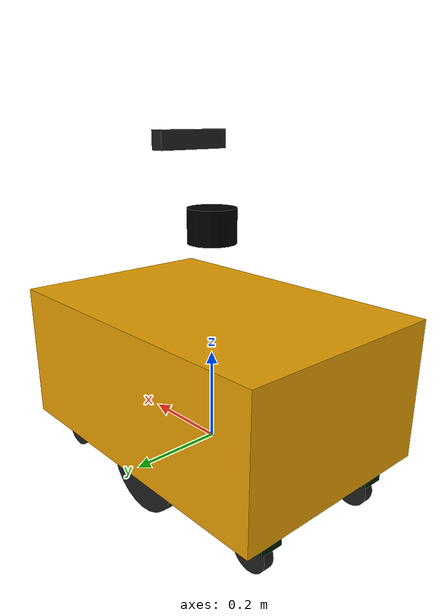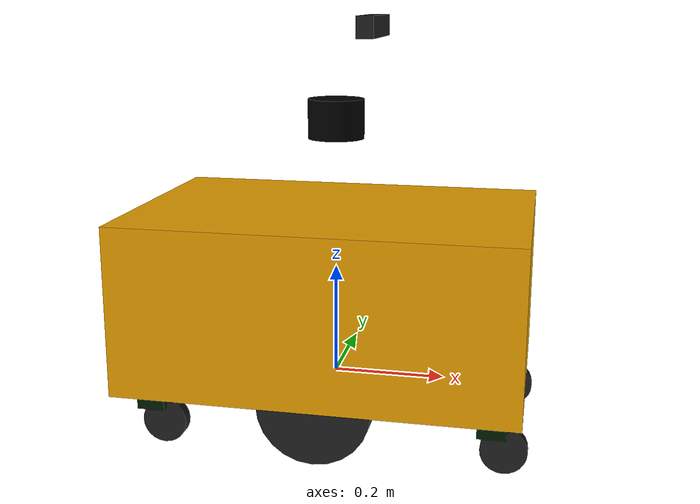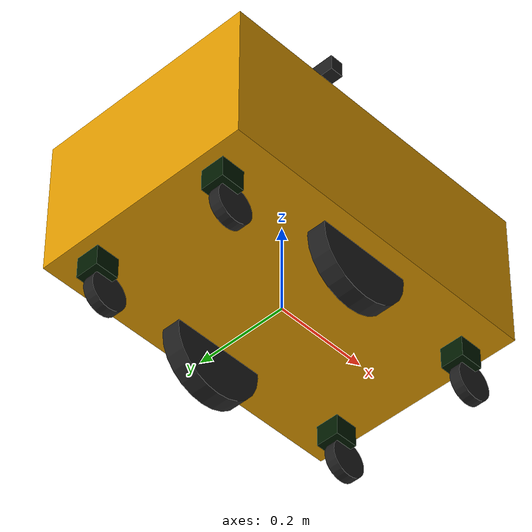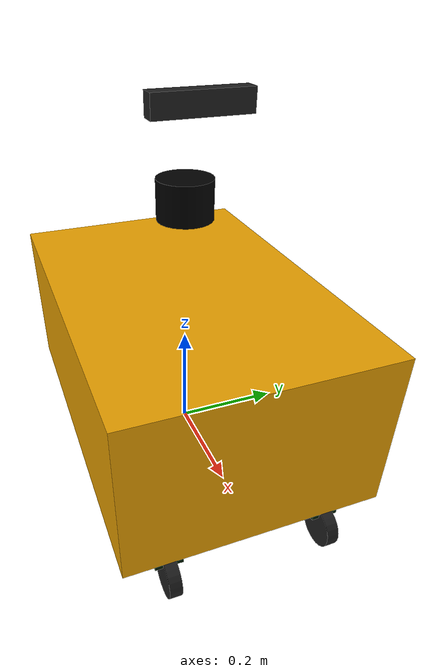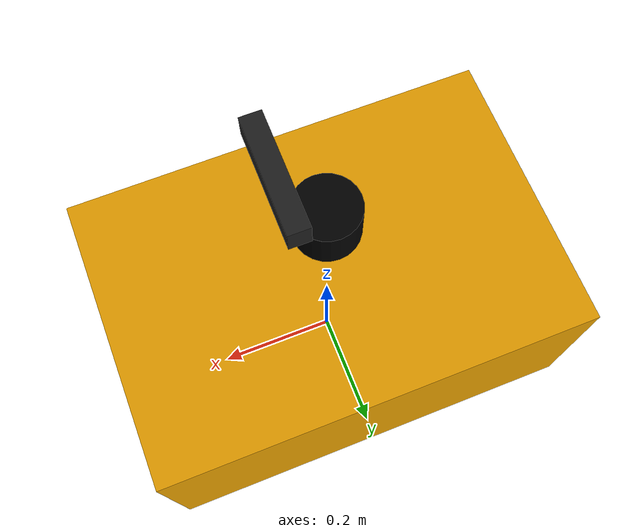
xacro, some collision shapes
<?xml version="1.0"?>
    <robot xmlns:xacro="http://www.ros.org/wiki/xacro"  name="moborobo_short">
        <xacro:include filename="robot_core.xacro" />
        <xacro:include filename="controller.xacro" />
        <xacro:include filename="camera.xacro"/>
        <xacro:include filename="imu.xacro"/>
        <xacro:include filename="lidar.xacro"/>
    </robot>

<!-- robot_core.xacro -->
<robot xmlns:xacro="http://www.ros.org/wiki/xacro" name="gravel_detect_robot">

  <xacro:property name="mesh_path" value="file://$(find gravel_detect)/meshes/moborobo_short.stl"/>

  <link name="base_link">
    <visual>
      <geometry>
        <mesh filename="${mesh_path}" scale="1 1 1"/>
      </geometry>
    </visual>
    <collision>
      <origin xyz="0 0 0.04" rpy="0 0 0"/>
      <geometry>
        <box size="0.70 0.470 0.3"/>
      </geometry>
    </collision>
    <inertial>
      <origin xyz="0 0 0.06" rpy="0 0 0"/>
      <mass value="20.0"/>
      <inertia ixx="0.51816" ixy="0" ixz="0" iyy="0.966664" iyz="0" izz="1.18484"/>
    </inertial>
  </link>

  <link name="base_footprint"/>
  <joint name="base_footprint_joint" type="fixed">
    <parent link="base_footprint"/>
    <child link="base_link"/>
    <origin xyz="0 0 0.120" rpy="0 0 0"/>
  </joint>

  <xacro:macro name="caster_wheel" params="caster_name caster_xyz wheel_xyz">
    <link name="${caster_name}">
      <visual>
        <geometry>
          <box size="0.05 0.05 0.05"/>
        </geometry>
        <material name="green">
          <color rgba="0.0 0.1 0.0 1"/>
        </material>
      </visual>
      <collision>
        <geometry>
          <box size="0.05 0.05 0.05"/>
        </geometry>
      </collision>
      <inertial>
        <mass value="0.5"/>
        <inertia ixx="0.000208332" ixy="0" ixz="0" iyy="0.000208332" iyz="0" izz="0.000208332"/>
      </inertial>
    </link>

    <joint name="${caster_name}_joint" type="continuous">
      <parent link="base_link"/>
      <child link="${caster_name}"/>
      <origin xyz="${caster_xyz}" rpy="0 0 0"/>
      <axis xyz="0 0 1"/>
    </joint>

    <link name="${caster_name}_wheel">
      <visual>
        <geometry>
          <cylinder radius="0.04" length="0.0228"/>
        </geometry>
      </visual>
      <collision>
        <geometry>
          <cylinder radius="0.04" length="0.0228"/>
        </geometry>
      </collision>
      <inertial>
        <mass value="0.5"/>
        <inertia ixx="0.00022166" ixy="0" ixz="0" iyy="0.00022166" iyz="0" izz="0.0004"/>
      </inertial>
    </link>

    <joint name="${caster_name}_wheel_joint" type="continuous">
      <parent link="${caster_name}"/>
      <child link="${caster_name}_wheel"/>
      <origin xyz="${wheel_xyz}" rpy="-1.5708 0 0"/>
      <axis xyz="0 0 1"/>
    </joint>
  </xacro:macro>

  <xacro:caster_wheel caster_name="back_left_caster" caster_xyz="-0.300 0.150 -0.130" wheel_xyz="0.02 0 -0.05"/>
  <xacro:caster_wheel caster_name="back_right_caster" caster_xyz="-0.300 -0.150 -0.130" wheel_xyz="0.02 0 -0.05"/>
  <xacro:caster_wheel caster_name="front_left_caster" caster_xyz="0.300 0.150 -0.130" wheel_xyz="0.02 0 -0.05"/>
  <xacro:caster_wheel caster_name="front_right_caster" caster_xyz="0.300 -0.150 -0.130" wheel_xyz="0.02 0 -0.05"/>

  <link name="right_wheel">
    <visual>
      <geometry>
        <cylinder radius="0.1" length="0.04"/>
      </geometry>
    </visual>
    <collision>
      <geometry>
        <cylinder radius="0.1" length="0.04"/>
      </geometry>
    </collision>
    <inertial>
      <mass value="2"/>
      <inertia ixx="0.005066668" ixy="0" ixz="0" iyy="0.005066668" iyz="0" izz="0.01"/>
    </inertial>
  </link>

  <joint name="right_wheel_joint" type="continuous">
    <parent link="base_link"/>
    <child link="right_wheel"/>
    <origin xyz="0.0 -0.175 -0.120" rpy="-1.5708 0 0"/>
    <axis xyz="0 0 1"/>
  </joint>

  <link name="left_wheel">
    <visual>
      <geometry>
        <cylinder radius="0.1" length="0.04"/>
      </geometry>
    </visual>
    <collision>
      <geometry>
        <cylinder radius="0.1" length="0.04"/>
      </geometry>
    </collision>
    <inertial>
      <mass value="0.5"/>
      <inertia ixx="0.001266667" ixy="0" ixz="0" iyy="0.001266667" iyz="0" izz="0.0025"/>
    </inertial>
  </link>

  <joint name="left_wheel_joint" type="continuous">
    <parent link="base_link"/>
    <child link="left_wheel"/>
    <origin xyz="0.0 0.175 -0.120" rpy="-1.5708 0 0"/>
    <axis xyz="0 0 1"/>
  </joint>

  <gazebo>
    <plugin name="gazebo_ros_joint_state_publisher" filename="libgazebo_ros_joint_state_publisher.so">
      <update_rate>50</update_rate>
      <joint_name>front_left_caster_joint</joint_name>
      <joint_name>front_left_caster_wheel_joint</joint_name>
      <joint_name>front_right_caster_joint</joint_name>
      <joint_name>front_right_caster_wheel_joint</joint_name>
      <joint_name>back_left_caster_joint</joint_name>
      <joint_name>back_left_caster_wheel_joint</joint_name>
      <joint_name>back_right_caster_joint</joint_name>
      <joint_name>back_right_caster_wheel_joint</joint_name>
      <joint_name>left_wheel_joint</joint_name>
      <joint_name>right_wheel_joint</joint_name>
    </plugin>
  </gazebo>

  <!-- Gazebo materials -->
  <gazebo reference="back_left_caster"><material>Gazebo/White</material></gazebo>
  <gazebo reference="back_left_caster_wheel"><material>Gazebo/Black</material></gazebo>
  <gazebo reference="back_right_caster"><material>Gazebo/White</material></gazebo>
  <gazebo reference="back_right_caster_wheel"><material>Gazebo/Black</material></gazebo>
  <gazebo reference="front_left_caster"><material>Gazebo/White</material></gazebo>
  <gazebo reference="front_left_caster_wheel"><material>Gazebo/Black</material></gazebo>
  <gazebo reference="front_right_caster"><material>Gazebo/White</material></gazebo>
  <gazebo reference="front_right_caster_wheel"><material>Gazebo/Black</material></gazebo>
  <gazebo reference="left_wheel"><material>Gazebo/Black</material></gazebo>
  <gazebo reference="right_wheel"><material>Gazebo/Black</material></gazebo>

</robot>

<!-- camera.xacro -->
<robot xmlns:xacro="http://www.ros.org/wiki/xacro" >

    <joint name="camera_joint" type="fixed">
        <parent link="base_link"/>
        <child link="camera_link"/>
        <origin xyz="0.065 0 0.51" rpy="0 0 0"/>
    </joint>

    <link name="camera_link">
        <visual>
            <geometry>
                <box size="0.03 0.163 0.037"/>
            </geometry>
        </visual>
    </link>

    <joint name="camera_optical_joint" type="fixed">
        <parent link="camera_link"/>
        <child link="camera_link_optical"/>
        <origin xyz="0 0 0" rpy="${-pi/2} 0 ${-pi/2}"/>
    </joint>

    <link name="camera_link_optical"></link>

    <gazebo reference="camera_link">

        <sensor name="camera" type="camera">
            <pose> 0 0 0 0 0 0 </pose>
            <visualize>true</visualize>
            <update_rate>10</update_rate>
            <camera>
                <horizontal_fov>1.089</horizontal_fov>
                <image>
                    <format>R8G8B8</format>
                    <width>640</width>
                    <height>480</height>
                </image>
                <clip>
                    <near>0.05</near>
                    <far>8.0</far>
                </clip>
            </camera>
            <plugin name="camera_controller" filename="libgazebo_ros_camera.so">
                <ros>
                    <remapping>~/image_raw:=image_raw</remapping>
                    <remapping>~/camera_info:=camera_info</remapping>
                </ros>
                <camera_name>zed2</camera_name>
                <frame_name>camera_link_optical</frame_name>
            </plugin>
        </sensor>
    </gazebo>

    <gazebo reference="camera_link">
        <material>Gazebo/Black</material>
      </gazebo>

</robot>

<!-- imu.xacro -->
<robot xmlns:xacro="http://www.ros.org/wiki/xacro">

    <link name="imu_link">
      <visual>
        <geometry>
          <box size="0.01 0.01 0.005"/>
        </geometry>
      </visual>

      <collision>
        <geometry>
          <box size="0.01 0.01 0.005"/>
        </geometry>
      </collision>

      <inertial>
        <mass value="0.01"/>
        <inertia ixx="0.000001" ixy="0" ixz="0" iyy="0.000001" iyz="0" izz="0.000001"/>
      </inertial>
    </link>

    <!-- IMU mounted directly on base_link for stable reference -->
    <joint name="imu_joint" type="fixed">
      <parent link="base_link"/>
      <child link="imu_link"/>
      <origin xyz="0.0 0.0 0.1" rpy="0 0 0"/>  <!-- Centered on robot body -->
    </joint>

  <gazebo reference="imu_link">
    <gravity>true</gravity>
    <sensor name="moborobo_imu" type="imu">
        <always_on>true</always_on>
        <update_rate>100</update_rate>
        <imu>
          <angular_velocity>
            <x>
              <noise type="gaussian">
                <mean>0.0</mean>
                <stddev>2e-4</stddev>
              </noise>
            </x>
            <y>
              <noise type="gaussian">
                <mean>0.0</mean>
                <stddev>2e-4</stddev>
              </noise>
            </y>
            <z>
              <noise type="gaussian">
                <mean>0.0</mean>
                <stddev>2e-4</stddev>
              </noise>
            </z>
          </angular_velocity>
          <linear_acceleration>
            <x>
              <noise type="gaussian">
                <mean>0.0</mean>
                <stddev>1.7e-2</stddev>
              </noise>
            </x>
            <y>
              <noise type="gaussian">
                <mean>0.0</mean>
                <stddev>1.7e-2</stddev>
              </noise>
            </y>
            <z>
              <noise type="gaussian">
                <mean>0.0</mean>
                <stddev>1.7e-2</stddev>
              </noise>
            </z>
          </linear_acceleration>
        </imu>
        <plugin name="moborobo_imu" filename="libgazebo_ros_imu_sensor.so">
            <ros>
                <namespace>imu</namespace>
                <remapping>~/out:=data</remapping>
            </ros>
            <frame_name>imu_link</frame_name>
            <initial_orientation_as_reference>false</initial_orientation_as_reference>
        </plugin>
    </sensor>
    <material>Gazebo/Orange</material>
  </gazebo>

</robot>

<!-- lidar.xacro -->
<robot xmlns:xacro="http://www.ros.org/wiki/xacro">

    <!-- LiDAR Link -->
    <link name="lidar_link">
        <visual>
            <geometry>
                <cylinder radius="0.05" length="0.07"/>
            </geometry>
            <material name="black">
                <color rgba="0.0 0.0 0.0 1.0"/>
            </material>
        </visual>
        <collision>
            <geometry>
                <cylinder radius="0.05" length="0.07"/>
            </geometry>
        </collision>
        <inertial>
            <mass value="0.5"/>
            <inertia ixx="0.000732" ixy="0" ixz="0" iyy="0.000732" iyz="0" izz="0.00125"/>
        </inertial>
    </link>

    <!-- LiDAR Joint - mounted on top of the robot -->
    <joint name="lidar_joint" type="fixed">
        <parent link="base_link"/>
        <child link="lidar_link"/>
        <origin xyz="0.0 0.0 0.35" rpy="0 0 0"/>
    </joint>

    <!-- Gazebo LiDAR Sensor Plugin -->
    <gazebo reference="lidar_link">
        <material>Gazebo/Black</material>

        <sensor name="lidar" type="ray">
            <pose>0 0 0 0 0 0</pose>
            <visualize>true</visualize>
            <update_rate>10</update_rate>

            <ray>
                <scan>
                    <horizontal>
                        <samples>360</samples>
                        <resolution>1</resolution>
                        <min_angle>-3.14159</min_angle>
                        <max_angle>3.14159</max_angle>
                    </horizontal>
                </scan>
                <range>
                    <min>0.1</min>
                    <max>30.0</max>
                    <resolution>0.01</resolution>
                </range>
                <noise>
                    <type>gaussian</type>
                    <mean>0.0</mean>
                    <stddev>0.01</stddev>
                </noise>
            </ray>

            <plugin name="lidar_controller" filename="libgazebo_ros_ray_sensor.so">
                <ros>
                    <remapping>~/out:=scan</remapping>
                </ros>
                <output_type>sensor_msgs/LaserScan</output_type>
                <frame_name>lidar_link</frame_name>
            </plugin>
        </sensor>
    </gazebo>

</robot>
